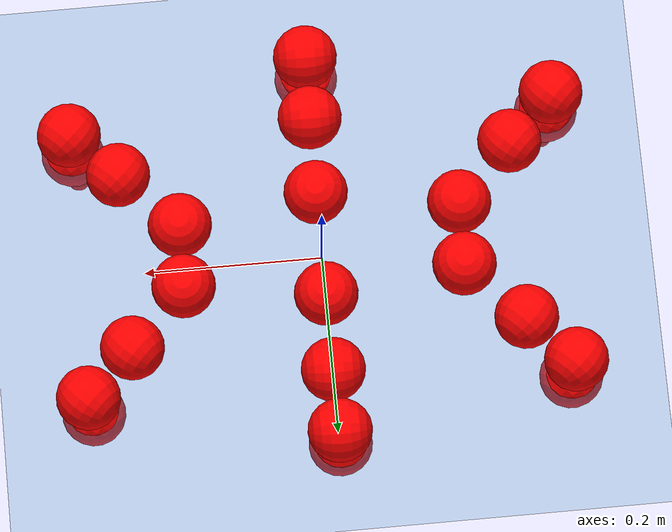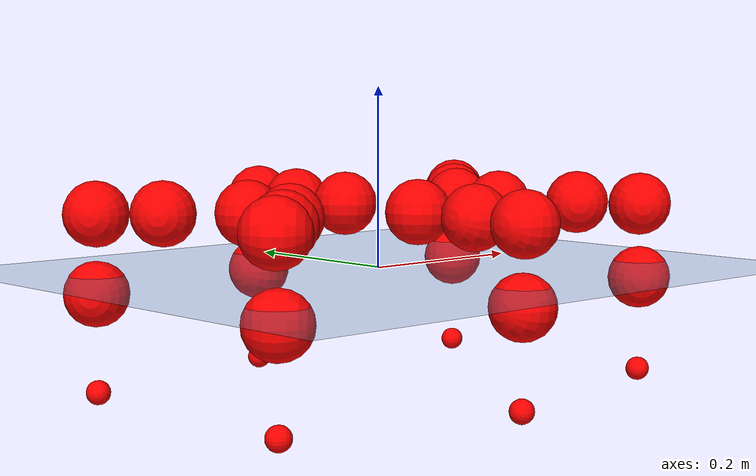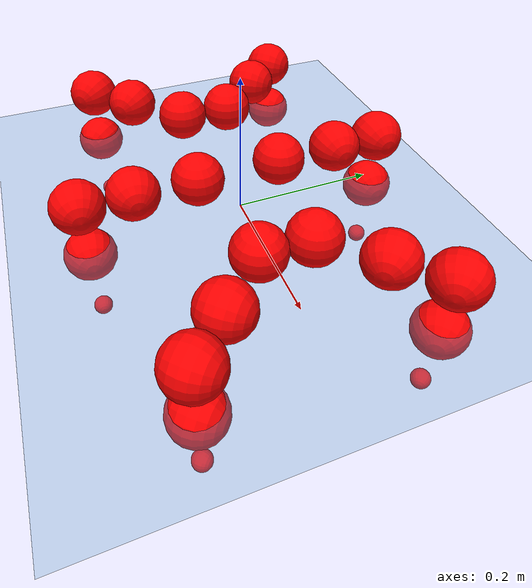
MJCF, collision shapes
<mujoco model="Golem">
  <compiler angle="radian" assetdir="assets" balanceinertia="true" inertiafromgeom="false"/>

  <option timestep="0.005" density="1.2" viscosity="2e-05"/>

  <size nkey="1"/>

  <visual>
    <quality shadowsize="8192"/>
    <map shadowclip="0.5"/>
  </visual>

  <default>
    <default class="/">
      <joint armature="0.01" damping="0.01" frictionloss="0.01"/>
      <geom contype="0" conaffinity="0" group="1" solref="-1000 -80"/>
      <site size="0.01 0.005 0.005" group="5"/>
      <general forcelimited="true" biastype="affine" gainprm="25" biasprm="0 -25 -0.5"/>
      <default class="visual">
        <geom type="mesh" group="2"/>
      </default>
      <default class="collision">
        <geom group="3"/>
      </default>
      <default class="foot">
        <geom size="0.01 0 0" condim="6" group="4" priority="1" solimp="0.015 1 0.01"/>
      </default>
      <default class="reward_collision_sphere">
        <geom group="5" rgba="1 0 0 1"/>
      </default>
    </default>
  </default>

  <asset>
    <texture type="skybox" colorspace="auto" name="//unnamed_texture_0" builtin="gradient" rgb1="0.95 0.95 0.95" rgb2="0.95 0.95 0.95" width="100" height="600"/>
    <texture type="2d" colorspace="auto" name="texplane" builtin="checker" rgb1="0.345 0.575 0.748" rgb2="0.345 0.575 0.748" markrgb="1 1 1" width="512" height="512"/>
    <material name="MatPlane" class="/" texture="texplane" texuniform="true" texrepeat="2 2" specular="0.9"/>
    <mesh name="body" class="/" file="body.stl" scale="0.001 0.001 0.001"/>
    <mesh name="coxa" class="/" file="coxa.stl" scale="0.001 0.001 0.001"/>
    <mesh name="femur" class="/" file="femur.stl" scale="0.001 0.001 0.001"/>
    <mesh name="tibia" class="/" file="tibia.stl" scale="0.001 0.001 0.001"/>
    <mesh name="tarsus" class="/" file="tarsus.stl" scale="0.001 0.001 0.001"/>
  </asset>

  <worldbody>
    <geom name="floor" class="/" size="100 100 0.125" type="plane" group="0" material="MatPlane"/>
    <light name="toplight_shadow" class="/" pos="0 0 5" dir="0.0990148 0.0990148 -0.990148" type="directional" ambient="0.04 0.04 0.04" diffuse="0.55 0.55 0.55" specular="0.12 0.12 0.12"/>
    <light name="toplight_fill" class="/" pos="0 0 5" dir="0.0990148 0.0990148 -0.990148" type="directional" castshadow="false" ambient="0.04 0.04 0.04" diffuse="0.3 0.3 0.3" specular="0.08 0.08 0.08"/>
    <body name="trunk" pos="3.94149e-05 -0.000285789 0.000239631" quat="1 0.000249408 0.000239141 -1.74538e-05">
      <inertial pos="-0.000600447 0.000778939 -0.00399002" quat="0.999991 -0.00015037 -0.00382006 0.00184965" mass="2.63053" diaginertia="0.00993051 0.00131081 0.0111143"/>
      <joint name="//unnamed_joint_0" type="free"/>
      <geom name="//unnamed_geom_1" class="/" pos="0 0 0.0653651" quat="1 0 0 0" type="mesh" rgba="0.9 0.9 0.9 1" mesh="body"/>
      <site name="imu" class="/" pos="0.132149 0.00433491 0.11193" size="0.00893809"/>
      <camera name="track" class="/" pos="0 -1.32626 0" quat="0.707107 0.707107 0 0" mode="trackcom"/>
      <camera name="ego_camera" class="/" pos="0.129606 0 0.102133" quat="-0.5 -0.5 0.5 0.5"/>
      <body name="coxa_RR" pos="-0.177379 -0.0558895 0.0669074" quat="0.382955 -0.000993424 -0.000143941 -0.923767">
        <inertial pos="0.000409223 -0.000830894 0.0011358" quat="0.999988 0.00139572 -0.00101317 0.00464621" mass="0.145765" diaginertia="0.0100006 0.00131291 0.0114924"/>
        <joint name="coxa_joint_RR" class="/" pos="0 0 0" axis="-0.00301843 -0.00608593 -0.999977" range="-3.15879 3.15474" armature="0.00899126" damping="0.000297164" frictionloss="0.00850327"/>
        <geom name="//unnamed_geom_2" class="/" type="mesh" rgba="0.2 0.2 0.2 1" mesh="coxa"/>
        <geom name="//unnamed_geom_3" class="reward_collision_sphere" size="0.0357524" pos="-0.029909 0 0"/>
        <body name="femur_RR" pos="0.0598045 0.00122799 0.000373714" quat="0.499428 -0.500344 0.499699 0.500527">
          <inertial pos="-0.000172771 0.0017236 -0.000714525" quat="0.999999 0.00075551 -0.00145347 -0.000106432" mass="0.141309" diaginertia="0.00964079 0.00127835 0.0109602"/>
          <joint name="femur_joint_RR" class="/" pos="0 0 0" axis="0.00153931 -0.000275178 -0.999999" range="-3.15613 3.15596" armature="0.0093341" damping="0.000957151" frictionloss="0.00894588"/>
          <geom name="//unnamed_geom_4" class="/" type="mesh" rgba="0.9 0.9 0.9 1" mesh="femur"/>
          <geom name="//unnamed_geom_5" class="reward_collision_sphere" size="0.0357524"/>
          <body name="tibia_RR" pos="-9.53135e-05 -0.0731934 -4.99698e-05" quat="5.74003e-06 1 -3.56219e-05 5.76094e-06">
            <inertial pos="0.00017522 0.00174004 0.000154762" quat="1 0.000352113 3.09617e-05 0.000104624" mass="0.142856" diaginertia="0.00982133 0.00128472 0.0110266"/>
            <joint name="tibia_joint_RR" class="/" pos="0 0 0" axis="0.00420249 0.00671367 0.999969" range="-3.10781 3.13908" armature="0.00925068" damping="4.52674e-05" frictionloss="0.00988384"/>
            <geom name="//unnamed_geom_6" class="/" type="mesh" rgba="0.2 0.2 0.2 1" mesh="tibia"/>
            <geom name="//unnamed_geom_7" class="reward_collision_sphere" size="0.0357524"/>
            <body name="tarsus_RR" pos="0.0863362 0.000872989 -0.0019344" quat="1 2.39914e-05 0.000116534 0.000283702">
              <inertial pos="0.0586693 0.000210554 5.6935e-05" quat="0.498443 0.503371 0.497717 0.50045" mass="0.140499" diaginertia="0.00972761 0.00127254 0.0112295"/>
              <joint name="tarsus_joint_RR" class="/" pos="0 0 0" axis="0.000227481 0.000935179 1" range="-3.12562 3.12917" armature="0.00921078" damping="0.00350297" frictionloss="0.00916336"/>
              <geom name="//unnamed_geom_8" class="/" type="mesh" rgba="0.9 0.9 0.9 1" mesh="tarsus"/>
              <geom name="foot_1" class="foot" size="0.00860884" pos="0.11166 0 0" quat="0 -0.707107 0 0.707107"/>
              <geom name="//unnamed_geom_10" class="reward_collision_sphere" size="0.0357524"/>
              <geom name="//unnamed_geom_11" class="reward_collision_sphere" size="0.0134071" pos="0.107174 0 0"/>
              <site name="foot_1" class="foot" pos="0.11166 0 0" quat="0 -0.707107 0 0.707107" size="0.00893809"/>
            </body>
          </body>
        </body>
      </body>
      <body name="coxa_RM" pos="0.00150042 -0.0901962 0.0651035" quat="0.707105 -3.2932e-06 6.07118e-06 -0.707109">
        <inertial pos="0.000669496 -0.000211968 -0.000612675" quat="0.999953 0.000905723 -0.0022096 -0.00943305" mass="0.147937" diaginertia="0.0101181 0.00134115 0.011451"/>
        <joint name="coxa_joint_RM" class="/" pos="0 0 0" axis="0.00779255 -0.00163853 -0.999968" range="-3.14123 3.15434" armature="0.00920007" damping="0.0133296" frictionloss="0.00885787"/>
        <geom name="//unnamed_geom_12" class="/" type="mesh" rgba="0.2 0.2 0.2 1" mesh="coxa"/>
        <geom name="//unnamed_geom_13" class="reward_collision_sphere" size="0.0357524" pos="-0.029909 0 0"/>
        <body name="femur_RM" pos="0.0565508 -0.00105784 -0.000251145" quat="0.499859 -0.500178 0.499865 0.500098">
          <inertial pos="-0.000255664 -8.67877e-05 -0.000243954" quat="0.999999 0.00147024 7.2038e-05 0.000394941" mass="0.141894" diaginertia="0.00975358 0.00129012 0.0112667"/>
          <joint name="femur_joint_RM" class="/" pos="0 0 0" axis="-0.00021261 0.000264622 -1" range="-3.12551 3.12133" armature="0.00893949" damping="0.00689343" frictionloss="0.00949791"/>
          <geom name="//unnamed_geom_14" class="/" type="mesh" rgba="0.9 0.9 0.9 1" mesh="femur"/>
          <geom name="//unnamed_geom_15" class="reward_collision_sphere" size="0.0357524"/>
          <body name="tibia_RM" pos="0.00163491 -0.0706602 -0.00100534" quat="0.000236207 1 -0.000102201 0.000210962">
            <inertial pos="0.000474039 0.000268494 0.000533077" quat="1 -3.98125e-05 8.93287e-05 -5.40109e-05" mass="0.145484" diaginertia="0.00987022 0.00128013 0.011225"/>
            <joint name="tibia_joint_RM" class="/" pos="0 0 0" axis="0.00657362 0.000997056 0.999978" range="-3.15962 3.13865" armature="0.00819612" damping="0.00776252" frictionloss="0.00962304"/>
            <geom name="//unnamed_geom_16" class="/" type="mesh" rgba="0.2 0.2 0.2 1" mesh="tibia"/>
            <geom name="//unnamed_geom_17" class="reward_collision_sphere" size="0.0357524"/>
            <body name="tarsus_RM" pos="0.0851848 -0.00171388 0.000470234" quat="1 6.1478e-06 -1.10009e-05 -2.37991e-05">
              <inertial pos="0.0596536 0.0010289 0.000151319" quat="0.499171 0.499287 0.500344 0.501195" mass="0.146244" diaginertia="0.0100071 0.00130689 0.011302"/>
              <joint name="tarsus_joint_RM" class="/" pos="0 0 0" axis="-0.00344304 0.00298221 0.99999" range="-3.15893 3.13933" armature="0.00936135" damping="0.00393946" frictionloss="0.00881724"/>
              <geom name="//unnamed_geom_18" class="/" type="mesh" rgba="0.9 0.9 0.9 1" mesh="tarsus"/>
              <geom name="foot_2" class="foot" size="0.0090942" pos="0.11166 0 0" quat="0 -0.707107 0 0.707107"/>
              <geom name="//unnamed_geom_20" class="reward_collision_sphere" size="0.0357524"/>
              <geom name="//unnamed_geom_21" class="reward_collision_sphere" size="0.0134071" pos="0.107174 0 0"/>
              <site name="foot_2" class="foot" pos="0.11166 0 0" quat="0 -0.707107 0 0.707107" size="0.00893809"/>
            </body>
          </body>
        </body>
      </body>
      <body name="coxa_RF" pos="0.176235 -0.0571087 0.0665326" quat="0.923866 0.000102246 4.466e-05 -0.382717">
        <inertial pos="-0.00149417 0.000453775 -0.000266092" quat="0.999998 -0.000606183 -0.00012591 -0.00171081" mass="0.143274" diaginertia="0.0100965 0.00132558 0.0113584"/>
        <joint name="coxa_joint_RF" class="/" pos="0 0 0" axis="0.00386144 -0.0052986 -0.999979" range="-3.13021 3.14439" armature="0.00883774" damping="0.017788" frictionloss="0.00952932"/>
        <geom name="//unnamed_geom_22" class="/" type="mesh" rgba="0.2 0.2 0.2 1" mesh="coxa"/>
        <geom name="//unnamed_geom_23" class="reward_collision_sphere" size="0.0357524" pos="-0.029909 0 0"/>
        <body name="femur_RF" pos="0.0600766 0.00021506 -0.000195196" quat="0.499706 -0.500358 0.4999 0.500036">
          <inertial pos="0.00061504 -0.000473559 0.000545386" quat="0.999994 0.000361255 0.00226973 -0.00275158" mass="0.143996" diaginertia="0.00985227 0.00127955 0.0111584"/>
          <joint name="femur_joint_RF" class="/" pos="0 0 0" axis="-0.000616149 0.00510348 -0.999987" range="-3.15873 3.1413" armature="0.00924607" damping="0.00858658" frictionloss="0.00917382"/>
          <geom name="//unnamed_geom_24" class="/" type="mesh" rgba="0.9 0.9 0.9 1" mesh="femur"/>
          <geom name="//unnamed_geom_25" class="reward_collision_sphere" size="0.0357524"/>
          <body name="tibia_RF" pos="0.00168832 -0.0720625 0.000226573" quat="-0.00058896 1 1.69931e-05 -5.6383e-05">
            <inertial pos="-0.0002189 -0.00119719 -0.000753924" quat="0.99998 0.00327539 0.00525203 -0.00105614" mass="0.137376" diaginertia="0.0097069 0.00125022 0.0110724"/>
            <joint name="tibia_joint_RF" class="/" pos="0 0 0" axis="0.00513332 -0.00165367 0.999985" range="-3.12173 3.13829" armature="0.00892975" damping="0" frictionloss="0.00916141"/>
            <geom name="//unnamed_geom_26" class="/" type="mesh" rgba="0.2 0.2 0.2 1" mesh="tibia"/>
            <geom name="//unnamed_geom_27" class="reward_collision_sphere" size="0.0357524"/>
            <body name="tarsus_RF" pos="0.0848797 0.000538538 -0.000811719" quat="1 2.30921e-05 4.12308e-05 -2.39478e-05">
              <inertial pos="0.0584674 0.000242695 -0.000590576" quat="0.497628 0.497651 0.502848 0.50185" mass="0.144828" diaginertia="0.0100817 0.00128338 0.011296"/>
              <joint name="tarsus_joint_RF" class="/" pos="0 0 0" axis="0.0127339 0.00115725 0.999918" range="-3.1483 3.14156" armature="0.00912495" damping="0.00823312" frictionloss="0.0086547"/>
              <geom name="//unnamed_geom_28" class="/" type="mesh" rgba="0.9 0.9 0.9 1" mesh="tarsus"/>
              <geom name="foot_3" class="foot" size="0.00859204" pos="0.11166 0 0" quat="0 -0.707107 0 0.707107"/>
              <geom name="//unnamed_geom_30" class="reward_collision_sphere" size="0.0357524"/>
              <geom name="//unnamed_geom_31" class="reward_collision_sphere" size="0.0134071" pos="0.107174 0 0"/>
              <site name="foot_3" class="foot" pos="0.11166 0 0" quat="0 -0.707107 0 0.707107" size="0.00893809"/>
            </body>
          </body>
        </body>
      </body>
      <body name="coxa_LR" pos="-0.176296 0.0572137 0.0667259" quat="0.382581 -0.000204772 -0.000566066 0.923922">
        <inertial pos="0.00106315 0.000495759 -0.000585024" quat="1 5.57978e-05 -1.79721e-05 -0.000102649" mass="0.142618" diaginertia="0.00996135 0.00128557 0.0111347"/>
        <joint name="coxa_joint_LR" class="/" pos="0 0 0" axis="-0.00661439 0.00167619 -0.999977" range="-3.11974 3.16649" armature="0.00886111" damping="0.0106487" frictionloss="0.00900876"/>
        <geom name="//unnamed_geom_32" class="/" type="mesh" rgba="0.2 0.2 0.2 1" mesh="coxa"/>
        <geom name="//unnamed_geom_33" class="reward_collision_sphere" size="0.0357524" pos="-0.029909 0 0"/>
        <body name="femur_LR" pos="0.0607652 -0.00232345 -0.00106701" quat="0.500259 -0.499911 0.500023 0.499806">
          <inertial pos="0.000441738 7.36654e-06 -0.00105701" quat="0.999965 0.00459899 -0.0051754 -0.00477941" mass="0.145122" diaginertia="0.00993786 0.00130055 0.0111912"/>
          <joint name="femur_joint_LR" class="/" pos="0 0 0" axis="-0.0107948 0.00523164 0.999928" range="-3.12162 3.11961" armature="0.00985025" damping="0.00642468" frictionloss="0.00879337"/>
          <geom name="//unnamed_geom_34" class="/" type="mesh" rgba="0.9 0.9 0.9 1" mesh="femur"/>
          <geom name="//unnamed_geom_35" class="reward_collision_sphere" size="0.0357524"/>
          <body name="tibia_LR" pos="0.000719259 -0.0723231 -0.0019777" quat="-0.000137765 1 0.000179355 -0.000374276">
            <inertial pos="0.000605646 -0.000692923 0.00068056" quat="1 3.6592e-05 -5.62071e-05 4.83091e-05" mass="0.144645" diaginertia="0.00982025 0.00126312 0.011217"/>
            <joint name="tibia_joint_LR" class="/" pos="0 0 0" axis="-0.000724294 -7.95552e-05 -1" range="-3.10614 3.14363" armature="0.00864782" damping="0.00890319" frictionloss="0.00896002"/>
            <geom name="//unnamed_geom_36" class="/" type="mesh" rgba="0.2 0.2 0.2 1" mesh="tibia"/>
            <geom name="//unnamed_geom_37" class="reward_collision_sphere" size="0.0357524"/>
            <body name="tarsus_LR" pos="0.0861401 0.000943563 0.00163481" quat="1 2.14101e-05 2.81562e-05 7.40394e-05">
              <inertial pos="0.0605315 -0.000676261 0.000289357" quat="0.499892 0.500204 0.499561 0.500341" mass="0.141813" diaginertia="0.00995671 0.00133068 0.0111331"/>
              <joint name="tarsus_joint_LR" class="/" pos="0 0 0" axis="-0.00271675 0.00192667 -0.999994" range="-3.13501 3.13026" armature="0.0089084" damping="0.000582925" frictionloss="0.00916486"/>
              <geom name="//unnamed_geom_38" class="/" type="mesh" rgba="0.9 0.9 0.9 1" mesh="tarsus"/>
              <geom name="foot_4" class="foot" size="0.00871155" pos="0.11166 0 0" quat="0.707107 0 -0.707107 0"/>
              <geom name="//unnamed_geom_40" class="reward_collision_sphere" size="0.0357524"/>
              <geom name="//unnamed_geom_41" class="reward_collision_sphere" size="0.0134071" pos="0.107174 0 0"/>
              <site name="foot_4" class="foot" pos="0.11166 0 0" quat="0.707107 0 -0.707107 0" size="0.00893809"/>
            </body>
          </body>
        </body>
      </body>
      <body name="coxa_LM" pos="0.000342077 0.0862383 0.0675885" quat="0.706908 0.000356138 -0.000103827 0.707306">
        <inertial pos="0.00027805 -0.000164941 -0.000813338" quat="1 -0.000590996 0.000112365 -0.00024442" mass="0.143473" diaginertia="0.00965708 0.00127498 0.0110011"/>
        <joint name="coxa_joint_LM" class="/" pos="0 0 0" axis="-0.00178989 -0.00183953 -0.999997" stiffness="0.000374852" range="-3.14086 3.14039" armature="0.00853907" damping="0.00448927" frictionloss="0.00897049"/>
        <geom name="//unnamed_geom_42" class="/" type="mesh" rgba="0.2 0.2 0.2 1" mesh="coxa"/>
        <geom name="//unnamed_geom_43" class="reward_collision_sphere" size="0.0357524" pos="-0.029909 0 0"/>
        <body name="femur_LM" pos="0.0559027 3.47611e-05 -0.000173193" quat="0.499864 -0.500112 0.499904 0.500119">
          <inertial pos="-0.000274638 2.18131e-05 -0.00211628" quat="0.999999 0.00147297 0.0007316 -1.3104e-05" mass="0.144874" diaginertia="0.00995894 0.00130557 0.0112202"/>
          <joint name="femur_joint_LM" class="/" pos="0 0 0" axis="0.00510931 0.0020964 0.999985" range="-3.1484 3.10083" armature="0.00912216" damping="0" frictionloss="0.00854411"/>
          <geom name="//unnamed_geom_44" class="/" type="mesh" rgba="0.9 0.9 0.9 1" mesh="femur"/>
          <geom name="//unnamed_geom_45" class="reward_collision_sphere" size="0.0357524"/>
          <body name="tibia_LM" pos="-0.000215122 -0.0684674 0.0011966" quat="-9.60264e-05 1 0.000340899 0.000326658">
            <inertial pos="-0.00106298 0.000506719 -0.000223958" quat="0.999999 -0.000290635 0.00058488 -0.00104272" mass="0.137874" diaginertia="0.00958761 0.00124568 0.0107887"/>
            <joint name="tibia_joint_LM" class="/" pos="0 0 0" axis="-0.00309166 -0.00433624 -0.999986" range="-3.12524 3.15565" armature="0.0099601" damping="0" frictionloss="0.00924592"/>
            <geom name="//unnamed_geom_46" class="/" type="mesh" rgba="0.2 0.2 0.2 1" mesh="tibia"/>
            <geom name="//unnamed_geom_47" class="reward_collision_sphere" size="0.0357524"/>
            <body name="tarsus_LM" pos="0.0881914 -0.000222956 -0.000931831" quat="1 -7.65742e-05 -2.62215e-05 0.000226189">
              <inertial pos="0.0612176 -0.00112943 -0.000404506" quat="0.501804 0.499286 0.497004 0.501889" mass="0.139613" diaginertia="0.00965437 0.00121454 0.0109489"/>
              <joint name="tarsus_joint_LM" class="/" pos="0 0 0" axis="0.00129584 0.000808224 -0.999999" stiffness="0.00387314" range="-3.13987 3.1402" armature="0.00887999" damping="0.01565" frictionloss="0.00978414"/>
              <geom name="//unnamed_geom_48" class="/" type="mesh" rgba="0.9 0.9 0.9 1" mesh="tarsus"/>
              <geom name="foot_5" class="foot" size="0.00888452" pos="0.11166 0 0" quat="0.707107 0 -0.707107 0"/>
              <geom name="//unnamed_geom_50" class="reward_collision_sphere" size="0.0357524"/>
              <geom name="//unnamed_geom_51" class="reward_collision_sphere" size="0.0134071" pos="0.107174 0 0"/>
              <site name="foot_5" class="foot" pos="0.11166 0 0" quat="0.707107 0 -0.707107 0" size="0.00893809"/>
            </body>
          </body>
        </body>
      </body>
      <body name="coxa_LF" pos="0.177649 0.0547017 0.0664645" quat="0.923957 -6.23422e-05 2.4468e-05 0.382497">
        <inertial pos="-0.00130932 -0.00197163 0.000133201" quat="0.999993 -0.00270841 0.00242251 -0.000402883" mass="0.142326" diaginertia="0.00976897 0.00124052 0.0110917"/>
        <joint name="coxa_joint_LF" class="/" pos="0 0 0" axis="-0.000515649 0.00453857 -0.99999" range="-3.12665 3.13654" armature="0.0083882" damping="0" frictionloss="0.00876856"/>
        <geom name="//unnamed_geom_52" class="/" type="mesh" rgba="0.2 0.2 0.2 1" mesh="coxa"/>
        <geom name="//unnamed_geom_53" class="reward_collision_sphere" size="0.0357524" pos="-0.029909 0 0"/>
        <body name="femur_LF" pos="0.059433 0.00199776 0.00038402" quat="0.499938 -0.500011 0.500041 0.500011">
          <inertial pos="1.52592e-05 0.000432609 -0.000709924" quat="1 -0.000265777 -2.26795e-05 -0.000322309" mass="0.139364" diaginertia="0.00949755 0.00126342 0.0109597"/>
          <joint name="femur_joint_LF" class="/" pos="0 0 0" axis="0.00282372 0.00754666 0.999968" range="-3.12165 3.15007" armature="0.00892118" damping="0.0023468" frictionloss="0.00908487"/>
          <geom name="//unnamed_geom_54" class="/" type="mesh" rgba="0.9 0.9 0.9 1" mesh="femur"/>
          <geom name="//unnamed_geom_55" class="reward_collision_sphere" size="0.0357524"/>
          <body name="tibia_LF" pos="-0.000316672 -0.0735528 -0.000490167" quat="-0.000240548 1 0.000238142 9.36808e-05">
            <inertial pos="-0.000445461 0.00153674 0.000767344" quat="0.999998 -0.000382512 -0.00131425 -0.00121629" mass="0.142887" diaginertia="0.00990275 0.0012911 0.0112389"/>
            <joint name="tibia_joint_LF" class="/" pos="0 0 0" axis="-0.000771017 -4.82308e-05 -1" range="-3.13245 3.1278" armature="0.00944581" damping="2.70362e-05" frictionloss="0.00866268"/>
            <geom name="//unnamed_geom_56" class="/" type="mesh" rgba="0.2 0.2 0.2 1" mesh="tibia"/>
            <geom name="//unnamed_geom_57" class="reward_collision_sphere" size="0.0357524"/>
            <body name="tarsus_LF" pos="0.0890906 0.000254676 -0.00144694" quat="1 4.71995e-06 4.66477e-05 -3.96112e-05">
              <inertial pos="0.0591313 -0.000246952 0.000578503" quat="0.492423 0.50485 0.497337 0.505274" mass="0.144463" diaginertia="0.0098847 0.00128047 0.0110277"/>
              <joint name="tarsus_joint_LF" class="/" pos="0 0 0" axis="-0.00811809 -0.00588923 -0.99995" stiffness="0.0292461" range="-3.15706 3.13531" armature="0.00882311" damping="0.0252635" frictionloss="0.00935825"/>
              <geom name="//unnamed_geom_58" class="/" type="mesh" rgba="0.9 0.9 0.9 1" mesh="tarsus"/>
              <geom name="foot_6" class="foot" size="0.00889018" pos="0.11166 0 0" quat="0.707107 0 -0.707107 0"/>
              <geom name="//unnamed_geom_60" class="reward_collision_sphere" size="0.0357524"/>
              <geom name="//unnamed_geom_61" class="reward_collision_sphere" size="0.0134071" pos="0.107174 0 0"/>
              <site name="foot_6" class="foot" pos="0.11166 0 0" quat="0.707107 0 -0.707107 0" size="0.00893809"/>
            </body>
          </body>
        </body>
      </body>
    </body>
  </worldbody>

  <contact>
    <pair class="/" geom1="floor" geom2="foot_1" name="//unnamed_contact_0"/>
    <pair class="/" geom1="floor" geom2="foot_2" name="//unnamed_contact_1"/>
    <pair class="/" geom1="floor" geom2="foot_3" name="//unnamed_contact_2"/>
    <pair class="/" geom1="floor" geom2="foot_4" name="//unnamed_contact_3"/>
    <pair class="/" geom1="floor" geom2="foot_5" name="//unnamed_contact_4"/>
    <pair class="/" geom1="floor" geom2="foot_6" name="//unnamed_contact_5"/>
  </contact>

  <actuator>
    <general name="coxa_joint_RR" class="/" joint="coxa_joint_RR" forcerange="-6.56036 6.56036" gainprm="21.4741" biasprm="0 -21.4741 -0.454427"/>
    <general name="femur_joint_RR" class="/" joint="femur_joint_RR" forcerange="-6.38209 6.38209" gainprm="21.4741" biasprm="0 -21.4741 -0.454427"/>
    <general name="tibia_joint_RR" class="/" joint="tibia_joint_RR" forcerange="-6.47924 6.47924" gainprm="21.4741" biasprm="0 -21.4741 -0.454427"/>
    <general name="tarsus_joint_RR" class="/" joint="tarsus_joint_RR" forcerange="-6.69512 6.69512" gainprm="21.4741" biasprm="0 -21.4741 -0.454427"/>
    <general name="coxa_joint_RM" class="/" joint="coxa_joint_RM" forcerange="-6.76876 6.76876" gainprm="21.4741" biasprm="0 -21.4741 -0.454427"/>
    <general name="femur_joint_RM" class="/" joint="femur_joint_RM" forcerange="-6.70728 6.70728" gainprm="21.4741" biasprm="0 -21.4741 -0.454427"/>
    <general name="tibia_joint_RM" class="/" joint="tibia_joint_RM" forcerange="-6.34834 6.34834" gainprm="21.4741" biasprm="0 -21.4741 -0.454427"/>
    <general name="tarsus_joint_RM" class="/" joint="tarsus_joint_RM" forcerange="-6.28163 6.28163" gainprm="21.4741" biasprm="0 -21.4741 -0.454427"/>
    <general name="coxa_joint_RF" class="/" joint="coxa_joint_RF" forcerange="-6.36054 6.36054" gainprm="21.4741" biasprm="0 -21.4741 -0.454427"/>
    <general name="femur_joint_RF" class="/" joint="femur_joint_RF" forcerange="-6.63743 6.63743" gainprm="21.4741" biasprm="0 -21.4741 -0.454427"/>
    <general name="tibia_joint_RF" class="/" joint="tibia_joint_RF" forcerange="-6.29504 6.29504" gainprm="21.4741" biasprm="0 -21.4741 -0.454427"/>
    <general name="tarsus_joint_RF" class="/" joint="tarsus_joint_RF" forcerange="-6.59909 6.59909" gainprm="21.4741" biasprm="0 -21.4741 -0.454427"/>
    <general name="coxa_joint_LR" class="/" joint="coxa_joint_LR" forcerange="-6.52314 6.52314" gainprm="21.4741" biasprm="0 -21.4741 -0.454427"/>
    <general name="femur_joint_LR" class="/" joint="femur_joint_LR" forcerange="-6.50666 6.50666" gainprm="21.4741" biasprm="0 -21.4741 -0.454427"/>
    <general name="tibia_joint_LR" class="/" joint="tibia_joint_LR" forcerange="-6.39904 6.39904" gainprm="21.4741" biasprm="0 -21.4741 -0.454427"/>
    <general name="tarsus_joint_LR" class="/" joint="tarsus_joint_LR" forcerange="-6.53378 6.53378" gainprm="21.4741" biasprm="0 -21.4741 -0.454427"/>
    <general name="coxa_joint_LM" class="/" joint="coxa_joint_LM" forcerange="-6.55624 6.55624" gainprm="21.4741" biasprm="0 -21.4741 -0.454427"/>
    <general name="femur_joint_LM" class="/" joint="femur_joint_LM" forcerange="-6.50384 6.50384" gainprm="21.4741" biasprm="0 -21.4741 -0.454427"/>
    <general name="tibia_joint_LM" class="/" joint="tibia_joint_LM" forcerange="-6.5104 6.5104" gainprm="21.4741" biasprm="0 -21.4741 -0.454427"/>
    <general name="tarsus_joint_LM" class="/" joint="tarsus_joint_LM" forcerange="-6.28067 6.28067" gainprm="21.4741" biasprm="0 -21.4741 -0.454427"/>
    <general name="coxa_joint_LF" class="/" joint="coxa_joint_LF" forcerange="-6.71522 6.71522" gainprm="21.4741" biasprm="0 -21.4741 -0.454427"/>
    <general name="femur_joint_LF" class="/" joint="femur_joint_LF" forcerange="-6.48634 6.48634" gainprm="21.4741" biasprm="0 -21.4741 -0.454427"/>
    <general name="tibia_joint_LF" class="/" joint="tibia_joint_LF" forcerange="-6.5587 6.5587" gainprm="21.4741" biasprm="0 -21.4741 -0.454427"/>
    <general name="tarsus_joint_LF" class="/" joint="tarsus_joint_LF" forcerange="-6.55921 6.55921" gainprm="21.4741" biasprm="0 -21.4741 -0.454427"/>
  </actuator>

  <sensor>
    <gyro site="imu" name="imu_angular_velocity"/>
    <velocimeter site="imu" name="imu_linear_velocity"/>
    <framelinvel objtype="site" objname="foot_1" name="foot_1_global_linear_velocity"/>
    <framelinvel objtype="site" objname="foot_2" name="foot_2_global_linear_velocity"/>
    <framelinvel objtype="site" objname="foot_3" name="foot_3_global_linear_velocity"/>
    <framelinvel objtype="site" objname="foot_4" name="foot_4_global_linear_velocity"/>
    <framelinvel objtype="site" objname="foot_5" name="foot_5_global_linear_velocity"/>
    <framelinvel objtype="site" objname="foot_6" name="foot_6_global_linear_velocity"/>
  </sensor>

  <keyframe>
    <key name="home" qpos="0 0 0.1457 1 0 0 0 0 0 0 0 0 0 0 0 0 0 0 0 0 0 0 0 0 0 0 0 0 0 0 0"/>
  </keyframe>
</mujoco>
